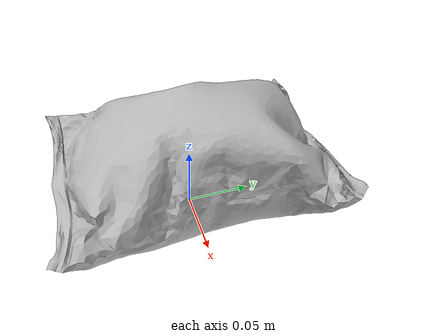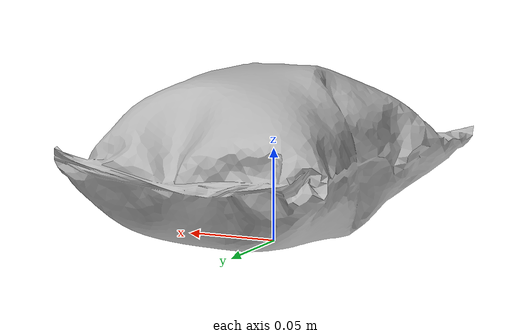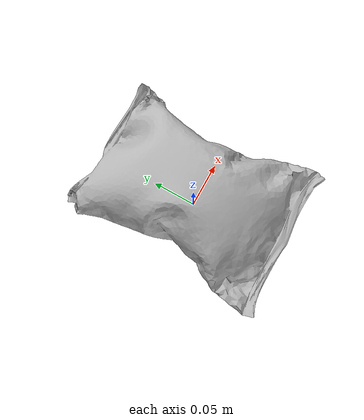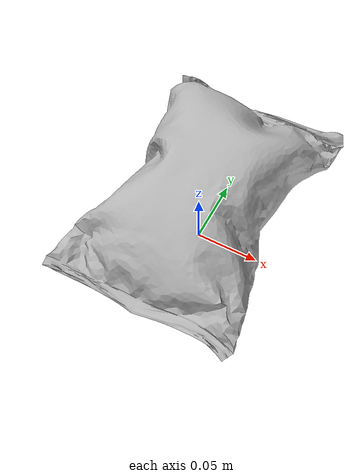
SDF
<?xml version="1.0"?>
<sdf version="1.9">
  <model name="chips-bag-a">
    <static>false</static>
    <link name="link">
      <velocity_decay>
        <linear>0.15</linear>
        <angular>0.20</angular>
      </velocity_decay>
      <visual name="visual">
        <pose>0 0 0.094742 0 1.57079632679 3.14159265359</pose>
        <geometry>
          <mesh>
            <uri>model://chips-bag-a/meshes/chips_bag_a.obj</uri>
          </mesh>
        </geometry>
      </visual>
      <collision name="collision_x01_y01">
        <pose>-0.070932 0 0.045027 0 0 0</pose>
        <geometry>
          <box>
            <size>0.012897 0.029126 0.018000</size>
          </box>
        </geometry>
        <surface>
          <friction>
            <ode>
              <mu>0.8</mu>
              <mu2>0.8</mu2>
            </ode>
          </friction>
        </surface>
      </collision>
      <collision name="collision_x01_y02">
        <pose>-0.070932 0 0.049015 0 0 0</pose>
        <geometry>
          <box>
            <size>0.012897 0.024432 0.020139</size>
          </box>
        </geometry>
        <surface>
          <friction>
            <ode>
              <mu>0.8</mu>
              <mu2>0.8</mu2>
            </ode>
          </friction>
        </surface>
      </collision>
      <collision name="collision_x01_y03">
        <pose>-0.070932 0 0.047502 0 0 0</pose>
        <geometry>
          <box>
            <size>0.012897 0.027307 0.022093</size>
          </box>
        </geometry>
        <surface>
          <friction>
            <ode>
              <mu>0.8</mu>
              <mu2>0.8</mu2>
            </ode>
          </friction>
        </surface>
      </collision>
      <collision name="collision_x02_y01">
        <pose>-0.058035 0 0.039818 0 0 0</pose>
        <geometry>
          <box>
            <size>0.012897 0.026453 0.025238</size>
          </box>
        </geometry>
        <surface>
          <friction>
            <ode>
              <mu>0.8</mu>
              <mu2>0.8</mu2>
            </ode>
          </friction>
        </surface>
      </collision>
      <collision name="collision_x02_y02">
        <pose>-0.058035 0 0.048495 0 0 0</pose>
        <geometry>
          <box>
            <size>0.012897 0.139050 0.049536</size>
          </box>
        </geometry>
        <surface>
          <friction>
            <ode>
              <mu>0.8</mu>
              <mu2>0.8</mu2>
            </ode>
          </friction>
        </surface>
      </collision>
      <collision name="collision_x02_y03">
        <pose>-0.058035 0 0.046279 0 0 0</pose>
        <geometry>
          <box>
            <size>0.012897 0.035648 0.045614</size>
          </box>
        </geometry>
        <surface>
          <friction>
            <ode>
              <mu>0.8</mu>
              <mu2>0.8</mu2>
            </ode>
          </friction>
        </surface>
      </collision>
      <collision name="collision_x03_y01">
        <pose>-0.045138 0 0.041565 0 0 0</pose>
        <geometry>
          <box>
            <size>0.012897 0.026876 0.040048</size>
          </box>
        </geometry>
        <surface>
          <friction>
            <ode>
              <mu>0.8</mu>
              <mu2>0.8</mu2>
            </ode>
          </friction>
        </surface>
      </collision>
      <collision name="collision_x03_y02">
        <pose>-0.045138 0 0.045467 0 0 0</pose>
        <geometry>
          <box>
            <size>0.012897 0.139473 0.079453</size>
          </box>
        </geometry>
        <surface>
          <friction>
            <ode>
              <mu>0.8</mu>
              <mu2>0.8</mu2>
            </ode>
          </friction>
        </surface>
      </collision>
      <collision name="collision_x03_y03">
        <pose>-0.045138 0 0.045933 0 0 0</pose>
        <geometry>
          <box>
            <size>0.012897 0.035182 0.059130</size>
          </box>
        </geometry>
        <surface>
          <friction>
            <ode>
              <mu>0.8</mu>
              <mu2>0.8</mu2>
            </ode>
          </friction>
        </surface>
      </collision>
      <collision name="collision_x04_y01">
        <pose>-0.032242 0 0.043295 0 0 0</pose>
        <geometry>
          <box>
            <size>0.012897 0.026883 0.044039</size>
          </box>
        </geometry>
        <surface>
          <friction>
            <ode>
              <mu>0.8</mu>
              <mu2>0.8</mu2>
            </ode>
          </friction>
        </surface>
      </collision>
      <collision name="collision_x04_y02">
        <pose>-0.032242 0 0.048027 0 0 0</pose>
        <geometry>
          <box>
            <size>0.012897 0.138280 0.091281</size>
          </box>
        </geometry>
        <surface>
          <friction>
            <ode>
              <mu>0.8</mu>
              <mu2>0.8</mu2>
            </ode>
          </friction>
        </surface>
      </collision>
      <collision name="collision_x04_y03">
        <pose>-0.032242 0 0.045679 0 0 0</pose>
        <geometry>
          <box>
            <size>0.012897 0.032400 0.064951</size>
          </box>
        </geometry>
        <surface>
          <friction>
            <ode>
              <mu>0.8</mu>
              <mu2>0.8</mu2>
            </ode>
          </friction>
        </surface>
      </collision>
      <collision name="collision_x05_y01">
        <pose>-0.019345 0 0.045234 0 0 0</pose>
        <geometry>
          <box>
            <size>0.012897 0.026684 0.044664</size>
          </box>
        </geometry>
        <surface>
          <friction>
            <ode>
              <mu>0.8</mu>
              <mu2>0.8</mu2>
            </ode>
          </friction>
        </surface>
      </collision>
      <collision name="collision_x05_y02">
        <pose>-0.019345 0 0.047812 0 0 0</pose>
        <geometry>
          <box>
            <size>0.012897 0.139567 0.093861</size>
          </box>
        </geometry>
        <surface>
          <friction>
            <ode>
              <mu>0.8</mu>
              <mu2>0.8</mu2>
            </ode>
          </friction>
        </surface>
      </collision>
      <collision name="collision_x05_y03">
        <pose>-0.019345 0 0.045704 0 0 0</pose>
        <geometry>
          <box>
            <size>0.012897 0.028450 0.065689</size>
          </box>
        </geometry>
        <surface>
          <friction>
            <ode>
              <mu>0.8</mu>
              <mu2>0.8</mu2>
            </ode>
          </friction>
        </surface>
      </collision>
      <collision name="collision_x06_y01">
        <pose>-0.006448 0 0.047116 0 0 0</pose>
        <geometry>
          <box>
            <size>0.012897 0.029848 0.044361</size>
          </box>
        </geometry>
        <surface>
          <friction>
            <ode>
              <mu>0.8</mu>
              <mu2>0.8</mu2>
            </ode>
          </friction>
        </surface>
      </collision>
      <collision name="collision_x06_y02">
        <pose>-0.006448 0 0.047235 0 0 0</pose>
        <geometry>
          <box>
            <size>0.012897 0.139671 0.094469</size>
          </box>
        </geometry>
        <surface>
          <friction>
            <ode>
              <mu>0.8</mu>
              <mu2>0.8</mu2>
            </ode>
          </friction>
        </surface>
      </collision>
      <collision name="collision_x06_y03">
        <pose>-0.006448 0 0.045208 0 0 0</pose>
        <geometry>
          <box>
            <size>0.012897 0.033245 0.065781</size>
          </box>
        </geometry>
        <surface>
          <friction>
            <ode>
              <mu>0.8</mu>
              <mu2>0.8</mu2>
            </ode>
          </friction>
        </surface>
      </collision>
      <collision name="collision_x07_y01">
        <pose>0.006448 0 0.047004 0 0 0</pose>
        <geometry>
          <box>
            <size>0.012897 0.029743 0.047516</size>
          </box>
        </geometry>
        <surface>
          <friction>
            <ode>
              <mu>0.8</mu>
              <mu2>0.8</mu2>
            </ode>
          </friction>
        </surface>
      </collision>
      <collision name="collision_x07_y02">
        <pose>0.006448 0 0.047200 0 0 0</pose>
        <geometry>
          <box>
            <size>0.012897 0.139455 0.094251</size>
          </box>
        </geometry>
        <surface>
          <friction>
            <ode>
              <mu>0.8</mu>
              <mu2>0.8</mu2>
            </ode>
          </friction>
        </surface>
      </collision>
      <collision name="collision_x07_y03">
        <pose>0.006448 0 0.043250 0 0 0</pose>
        <geometry>
          <box>
            <size>0.012897 0.033165 0.061220</size>
          </box>
        </geometry>
        <surface>
          <friction>
            <ode>
              <mu>0.8</mu>
              <mu2>0.8</mu2>
            </ode>
          </friction>
        </surface>
      </collision>
      <collision name="collision_x08_y01">
        <pose>0.019345 0 0.047515 0 0 0</pose>
        <geometry>
          <box>
            <size>0.012897 0.028648 0.048673</size>
          </box>
        </geometry>
        <surface>
          <friction>
            <ode>
              <mu>0.8</mu>
              <mu2>0.8</mu2>
            </ode>
          </friction>
        </surface>
      </collision>
      <collision name="collision_x08_y02">
        <pose>0.019345 0 0.047042 0 0 0</pose>
        <geometry>
          <box>
            <size>0.012897 0.138856 0.093539</size>
          </box>
        </geometry>
        <surface>
          <friction>
            <ode>
              <mu>0.8</mu>
              <mu2>0.8</mu2>
            </ode>
          </friction>
        </surface>
      </collision>
      <collision name="collision_x08_y03">
        <pose>0.019345 0 0.039828 0 0 0</pose>
        <geometry>
          <box>
            <size>0.012897 0.032378 0.052043</size>
          </box>
        </geometry>
        <surface>
          <friction>
            <ode>
              <mu>0.8</mu>
              <mu2>0.8</mu2>
            </ode>
          </friction>
        </surface>
      </collision>
      <collision name="collision_x09_y01">
        <pose>0.032242 0 0.047986 0 0 0</pose>
        <geometry>
          <box>
            <size>0.012897 0.027411 0.047847</size>
          </box>
        </geometry>
        <surface>
          <friction>
            <ode>
              <mu>0.8</mu>
              <mu2>0.8</mu2>
            </ode>
          </friction>
        </surface>
      </collision>
      <collision name="collision_x09_y02">
        <pose>0.032242 0 0.046235 0 0 0</pose>
        <geometry>
          <box>
            <size>0.012897 0.138387 0.091261</size>
          </box>
        </geometry>
        <surface>
          <friction>
            <ode>
              <mu>0.8</mu>
              <mu2>0.8</mu2>
            </ode>
          </friction>
        </surface>
      </collision>
      <collision name="collision_x09_y03">
        <pose>0.032242 0 0.042945 0 0 0</pose>
        <geometry>
          <box>
            <size>0.012897 0.032296 0.058411</size>
          </box>
        </geometry>
        <surface>
          <friction>
            <ode>
              <mu>0.8</mu>
              <mu2>0.8</mu2>
            </ode>
          </friction>
        </surface>
      </collision>
      <collision name="collision_x10_y01">
        <pose>0.045138 0 0.046522 0 0 0</pose>
        <geometry>
          <box>
            <size>0.012897 0.028529 0.044493</size>
          </box>
        </geometry>
        <surface>
          <friction>
            <ode>
              <mu>0.8</mu>
              <mu2>0.8</mu2>
            </ode>
          </friction>
        </surface>
      </collision>
      <collision name="collision_x10_y02">
        <pose>0.045138 0 0.044942 0 0 0</pose>
        <geometry>
          <box>
            <size>0.012897 0.138958 0.081781</size>
          </box>
        </geometry>
        <surface>
          <friction>
            <ode>
              <mu>0.8</mu>
              <mu2>0.8</mu2>
            </ode>
          </friction>
        </surface>
      </collision>
      <collision name="collision_x10_y03">
        <pose>0.045138 0 0.044258 0 0 0</pose>
        <geometry>
          <box>
            <size>0.012897 0.031104 0.060005</size>
          </box>
        </geometry>
        <surface>
          <friction>
            <ode>
              <mu>0.8</mu>
              <mu2>0.8</mu2>
            </ode>
          </friction>
        </surface>
      </collision>
      <collision name="collision_x11_y01">
        <pose>0.058035 0 0.046200 0 0 0</pose>
        <geometry>
          <box>
            <size>0.012897 0.030843 0.040843</size>
          </box>
        </geometry>
        <surface>
          <friction>
            <ode>
              <mu>0.8</mu>
              <mu2>0.8</mu2>
            </ode>
          </friction>
        </surface>
      </collision>
      <collision name="collision_x11_y02">
        <pose>0.058035 0 0.046711 0 0 0</pose>
        <geometry>
          <box>
            <size>0.012897 0.139365 0.059215</size>
          </box>
        </geometry>
        <surface>
          <friction>
            <ode>
              <mu>0.8</mu>
              <mu2>0.8</mu2>
            </ode>
          </friction>
        </surface>
      </collision>
      <collision name="collision_x11_y03">
        <pose>0.058035 0 0.044113 0 0 0</pose>
        <geometry>
          <box>
            <size>0.012897 0.031006 0.050028</size>
          </box>
        </geometry>
        <surface>
          <friction>
            <ode>
              <mu>0.8</mu>
              <mu2>0.8</mu2>
            </ode>
          </friction>
        </surface>
      </collision>
      <collision name="collision_x12_y01">
        <pose>0.070932 0 0.046765 0 0 0</pose>
        <geometry>
          <box>
            <size>0.012897 0.036097 0.025903</size>
          </box>
        </geometry>
        <surface>
          <friction>
            <ode>
              <mu>0.8</mu>
              <mu2>0.8</mu2>
            </ode>
          </friction>
        </surface>
      </collision>
      <collision name="collision_x12_y02">
        <pose>0.070932 0 0.047447 0 0 0</pose>
        <geometry>
          <box>
            <size>0.012897 0.138501 0.020931</size>
          </box>
        </geometry>
        <surface>
          <friction>
            <ode>
              <mu>0.8</mu>
              <mu2>0.8</mu2>
            </ode>
          </friction>
        </surface>
      </collision>
      <collision name="collision_x12_y03">
        <pose>0.070932 0 0.046341 0 0 0</pose>
        <geometry>
          <box>
            <size>0.012897 0.029888 0.028234</size>
          </box>
        </geometry>
        <surface>
          <friction>
            <ode>
              <mu>0.8</mu>
              <mu2>0.8</mu2>
            </ode>
          </friction>
        </surface>
      </collision>
      <inertial>
        <pose>0 0 0.047371 0 0 0</pose>
        <mass>0.05</mass>
        <inertia>
          <ixx>0.0002250840</ixx>
          <iyy>0.0001371946</iyy>
          <izz>0.0002874782</izz>
          <ixy>0.0</ixy>
          <ixz>0.0</ixz>
          <iyz>0.0</iyz>
        </inertia>
      </inertial>
    </link>
  </model>
</sdf>
